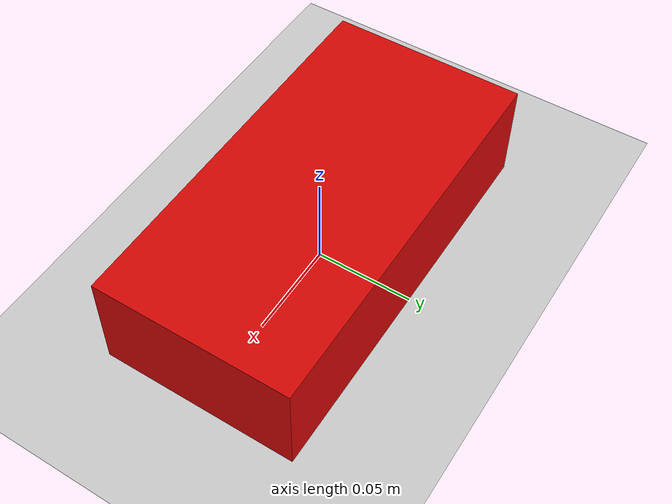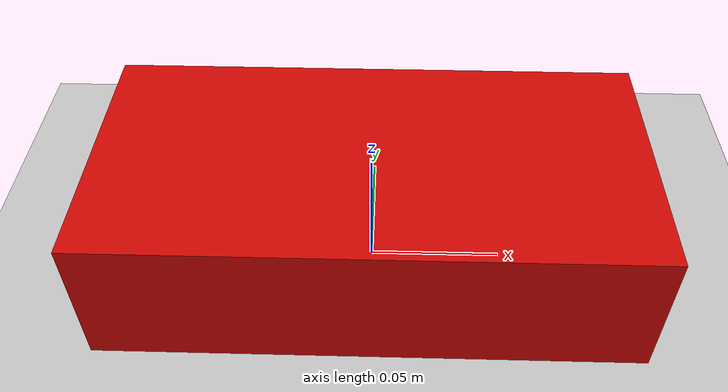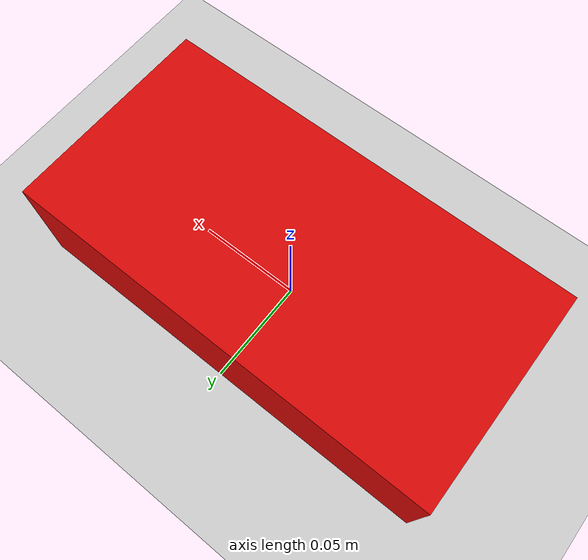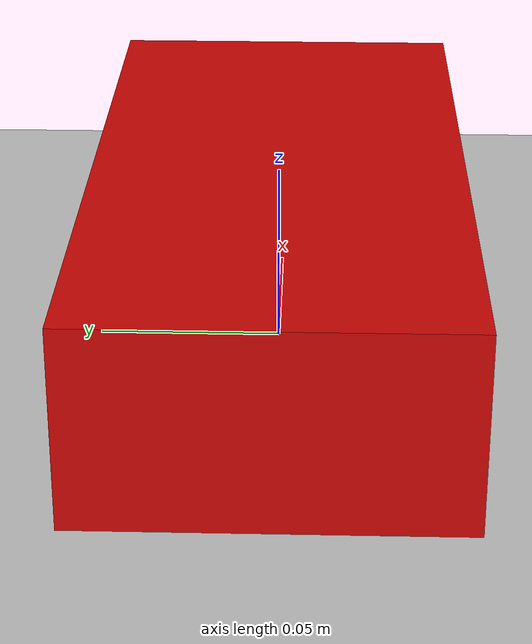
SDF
<?xml version="1.0"?>
<sdf version="1.6">
  <world name="m1_aerial_perception">
    <include>
      <uri>model://sun</uri>
    </include>
    <include>
      <uri>model://ground_plane</uri>
    </include>
    <model name="m1_brick">
      <!-- Validation target: keep GT invariant under rotor wash. Gazebo's
           set_model_state service can still reposition a static model between
           lightweight validation scenarios. -->
      <static>true</static>
      <pose>0 0 0.0265 0 0 0</pose>
      <link name="brick_link">
        <inertial>
          <mass>0.45</mass>
          <inertia>
            <ixx>0.000473</ixx><ixy>0</ixy><ixz>0</ixz>
            <iyy>0.001598</iyy><iyz>0</iyz><izz>0.001875</izz>
          </inertia>
        </inertial>
        <collision name="brick_collision">
          <geometry><box><size>0.20 0.10 0.053</size></box></geometry>
          <surface>
            <friction><ode><mu>1.0</mu><mu2>1.0</mu2></ode></friction>
          </surface>
        </collision>
        <visual name="brick_visual">
          <geometry><box><size>0.20 0.10 0.053</size></box></geometry>
          <material>
            <ambient>0.85 0.03 0.02 1</ambient>
            <diffuse>0.85 0.03 0.02 1</diffuse>
            <specular>0.05 0.01 0.01 1</specular>
          </material>
        </visual>
      </link>
    </model>
    <physics name="default_physics" default="0" type="ode">
      <max_step_size>0.004</max_step_size>
      <real_time_factor>1</real_time_factor>
      <real_time_update_rate>250</real_time_update_rate>
    </physics>
  </world>
</sdf>
